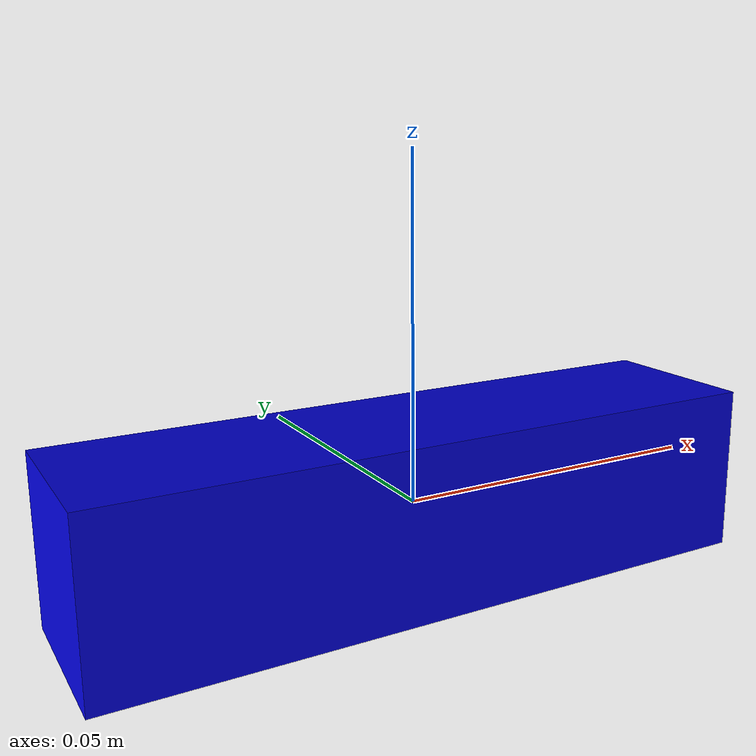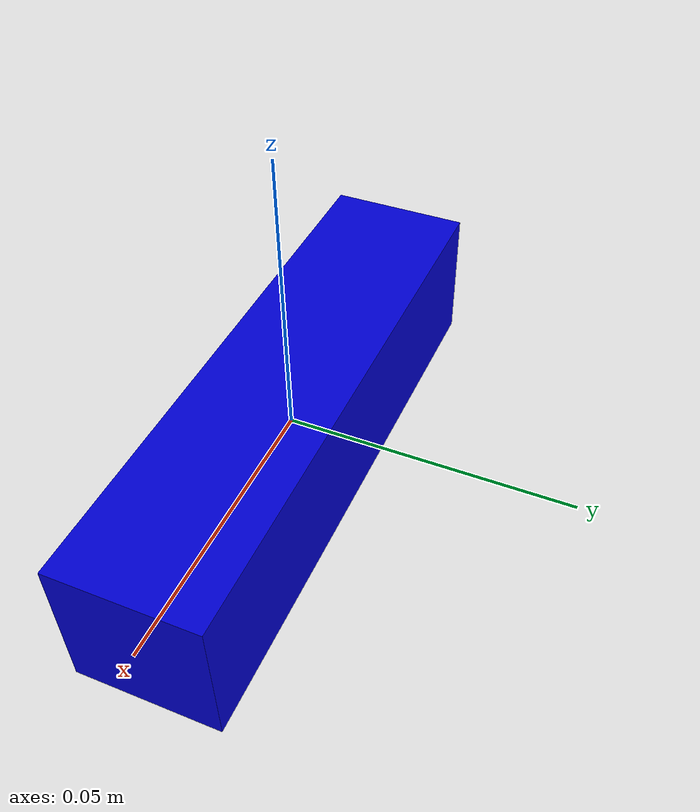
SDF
<?xml version='1.0'?>
<sdf version="1.4">
<model name="target_right">
  <pose>0 0 0 0 0 0</pose>
  <static>false</static>
    <link name="target_link_right">
       <gravity>0</gravity>
      <visual name="visual">
        <geometry>
          <box>
            <size>.1 .025 .025</size>
          </box>
        </geometry>
        <material>
          <ambient>0.0 0.0 0.84 1</ambient>
          <diffuse>0.0 0.0 0.84 1</diffuse>
          <specular>0.0 0.0 0.84 1</specular>
          <emissive>0 0 0.84 0</emissive>
        </material>
      </visual>
    </link>
  </model>
</sdf>
